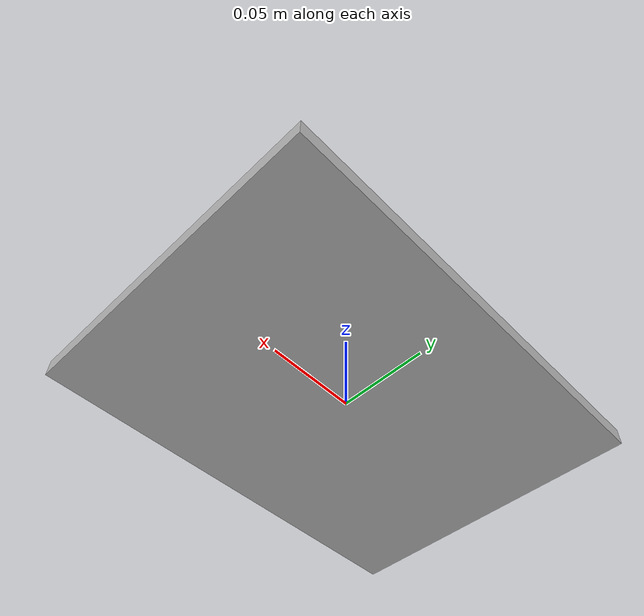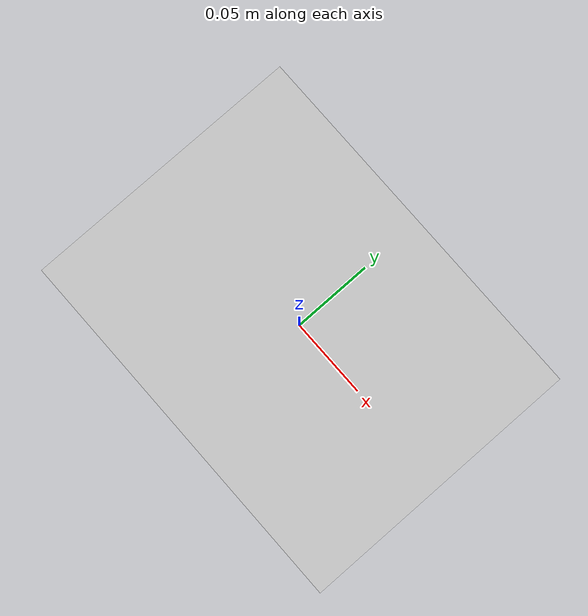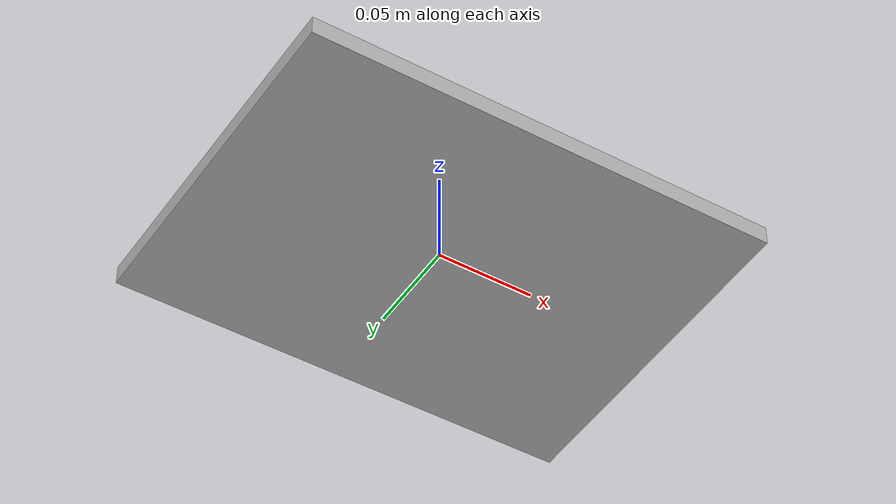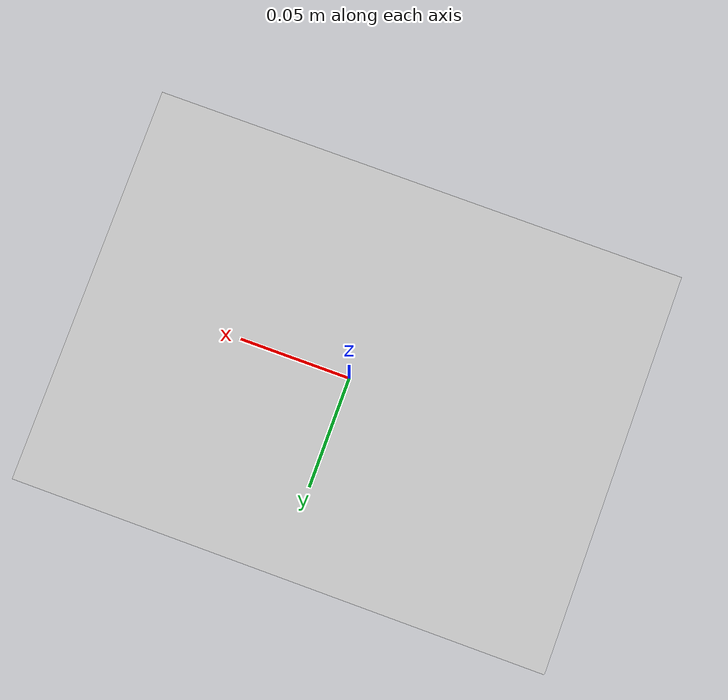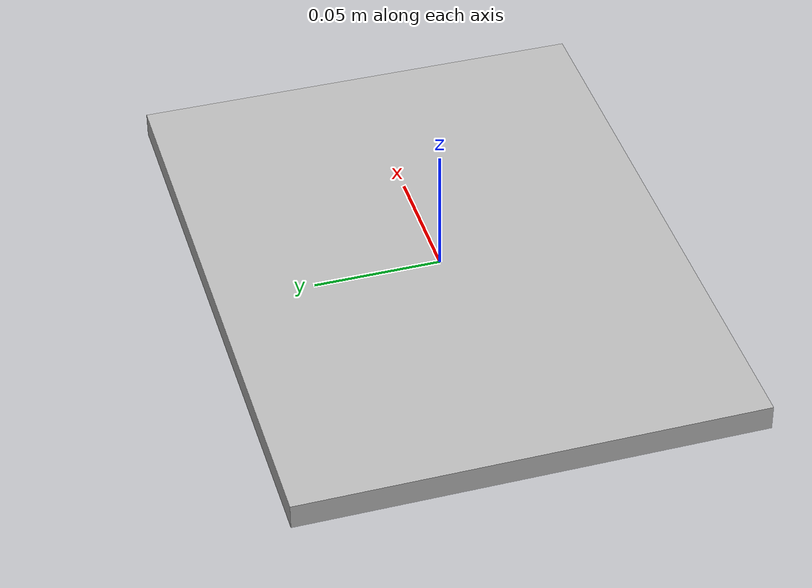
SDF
<?xml version='1.0'?>
<sdf version='1.4'>
  <model name="calib">
    <static>true</static>
    <link name="link">
      <pose>0 0 0 0 0 0</pose>
      <inertial>
        <mass>0.07</mass>
        <inertia>
          <ixx>0.000010</ixx>
          <iyy>0.000010</iyy>
          <izz>0.000010</izz>
        </inertia>
      </inertial>
      <collision name="collision">
        <geometry>
          <box>
              <size>0.24 0.18 0.01</size>
          </box>
        </geometry>
        <surface>
          <contact>
            <ode>
              <max_vel>0.1</max_vel>
              <min_depth>0.001</min_depth>
            </ode>
          </contact>
        </surface>
      </collision>
      <visual name="visual">
        <geometry>
          <box>
              <size>0.24 0.18 0.01</size>
          </box>
        </geometry>
        <material>
          <script>
            <name>calib/Diffuse</name>
            <uri>model://calib/materials/scripts</uri>
            <uri>model://calib/materials/textures</uri>
          </script>
        </material>
      </visual>
    </link>
  </model>
</sdf>
